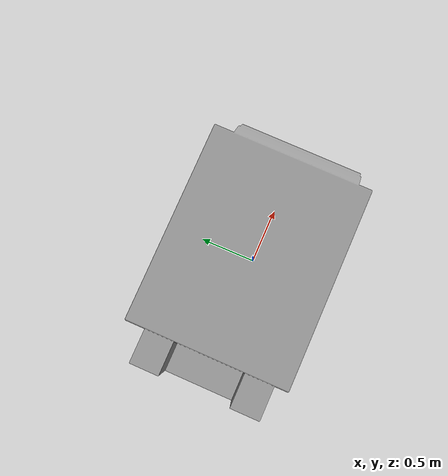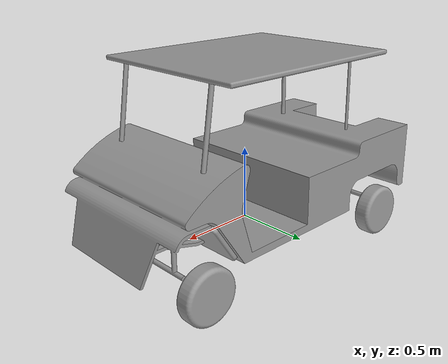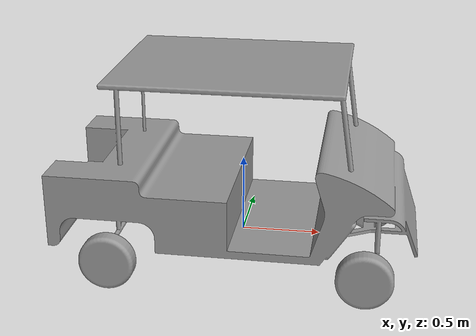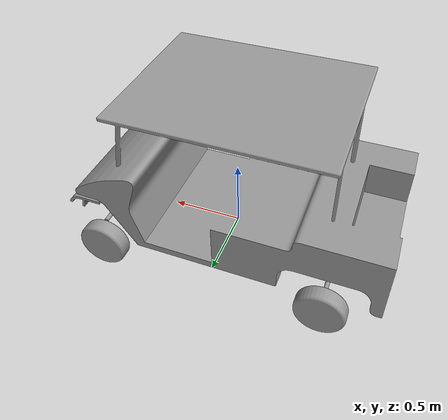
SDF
<?xml version='1.0'?>
<sdf version='1.7'>
  <model name='yoda_car_model'>
    <link name='link_1'>
      <inertial>
        <mass>1</mass>
        <inertia>
          <ixx>0.166667</ixx>
          <ixy>0</ixy>
          <ixz>0</ixz>
          <iyy>0.166667</iyy>
          <iyz>0</iyz>
          <izz>0.166667</izz>
        </inertia>
      </inertial>
      <pose>-0.094832 0.015297 0.069631 0 -0 0</pose>
      <visual name='visual'>
        <pose>0 0 0 0 -0 0</pose>
        <geometry>
          <mesh>
            <uri>/home/emircan/yoda_ws/src/yoda_cpp_package/urdf/arackasa2.dae</uri>
            <scale>1 1 1</scale>
          </mesh>
        </geometry>
        <material>
          <lighting>1</lighting>
          <script>
            <uri>file://media/materials/scripts/gazebo.material</uri>
            <name>Gazebo/Grey</name>
          </script>
          <shader type='pixel'/>
          <emissive>0 0 0 1</emissive>
        </material>
        <transparency>0</transparency>
        <cast_shadows>1</cast_shadows>
      </visual>
      <collision name='collision'>
        <laser_retro>0</laser_retro>
        <max_contacts>10</max_contacts>
        <pose>0 0 0 0 -0 0</pose>
        <geometry>
          <mesh>
            <uri>/home/emircan/yoda_ws/src/yoda_cpp_package/urdf/arackasa2.dae</uri>
            <scale>1 1 1</scale>
          </mesh>
        </geometry>
        <surface>
          <friction>
            <ode>
              <mu>1</mu>
              <mu2>1</mu2>
              <fdir1>0 0 0</fdir1>
              <slip1>0</slip1>
              <slip2>0</slip2>
            </ode>
            <torsional>
              <coefficient>1</coefficient>
              <patch_radius>0</patch_radius>
              <surface_radius>0</surface_radius>
              <use_patch_radius>1</use_patch_radius>
              <ode>
                <slip>0</slip>
              </ode>
            </torsional>
          </friction>
          <bounce>
            <restitution_coefficient>0</restitution_coefficient>
            <threshold>1e+06</threshold>
          </bounce>
          <contact>
            <collide_without_contact>0</collide_without_contact>
            <collide_without_contact_bitmask>1</collide_without_contact_bitmask>
            <collide_bitmask>1</collide_bitmask>
            <ode>
              <soft_cfm>0</soft_cfm>
              <soft_erp>0.2</soft_erp>
              <kp>1e+13</kp>
              <kd>1</kd>
              <max_vel>0.01</max_vel>
              <min_depth>0</min_depth>
            </ode>
            <bullet>
              <split_impulse>1</split_impulse>
              <split_impulse_penetration_threshold>-0.01</split_impulse_penetration_threshold>
              <soft_cfm>0</soft_cfm>
              <soft_erp>0.2</soft_erp>
              <kp>1e+13</kp>
              <kd>1</kd>
            </bullet>
          </contact>
        </surface>
      </collision>
    </link>
    <link name='link_2'>
      <inertial>
        <mass>1</mass>
        <inertia>
          <ixx>0.166667</ixx>
          <ixy>0</ixy>
          <ixz>0</ixz>
          <iyy>0.166667</iyy>
          <iyz>0</iyz>
          <izz>0.166667</izz>
        </inertia>
      </inertial>
      <pose>-0.772676 -0.555976 -0.016475 0 -0 0</pose>
      <visual name='visual'>
        <pose>0 0 0 0 -0 0</pose>
        <geometry>
          <mesh>
            <uri>/home/emircan/yoda_ws/src/yoda_cpp_package/urdf/lastik.dae</uri>
            <scale>1 1 1</scale>
          </mesh>
        </geometry>
        <material>
          <lighting>1</lighting>
          <script>
            <uri>file://media/materials/scripts/gazebo.material</uri>
            <name>Gazebo/Grey</name>
          </script>
          <shader type='pixel'/>
          <emissive>0 0 0 1</emissive>
        </material>
        <transparency>0</transparency>
        <cast_shadows>1</cast_shadows>
      </visual>
      <collision name='collision'>
        <laser_retro>0</laser_retro>
        <max_contacts>10</max_contacts>
        <pose>0 0 0 0 -0 0</pose>
        <geometry>
          <mesh>
            <uri>/home/emircan/yoda_ws/src/yoda_cpp_package/urdf/lastik.dae</uri>
            <scale>1 1 1</scale>
          </mesh>
        </geometry>
        <surface>
          <friction>
            <ode>
              <mu>1</mu>
              <mu2>1</mu2>
              <fdir1>0 0 0</fdir1>
              <slip1>0</slip1>
              <slip2>0</slip2>
            </ode>
            <torsional>
              <coefficient>1</coefficient>
              <patch_radius>0</patch_radius>
              <surface_radius>0</surface_radius>
              <use_patch_radius>1</use_patch_radius>
              <ode>
                <slip>0</slip>
              </ode>
            </torsional>
          </friction>
          <bounce>
            <restitution_coefficient>0</restitution_coefficient>
            <threshold>1e+06</threshold>
          </bounce>
          <contact>
            <collide_without_contact>0</collide_without_contact>
            <collide_without_contact_bitmask>1</collide_without_contact_bitmask>
            <collide_bitmask>1</collide_bitmask>
            <ode>
              <soft_cfm>0</soft_cfm>
              <soft_erp>0.2</soft_erp>
              <kp>1e+13</kp>
              <kd>1</kd>
              <max_vel>0.01</max_vel>
              <min_depth>0</min_depth>
            </ode>
            <bullet>
              <split_impulse>1</split_impulse>
              <split_impulse_penetration_threshold>-0.01</split_impulse_penetration_threshold>
              <soft_cfm>0</soft_cfm>
              <soft_erp>0.2</soft_erp>
              <kp>1e+13</kp>
              <kd>1</kd>
            </bullet>
          </contact>
        </surface>
      </collision>
    </link>
    <link name='link_2_clone'>
      <inertial>
        <mass>1</mass>
        <inertia>
          <ixx>0.166667</ixx>
          <ixy>0</ixy>
          <ixz>0</ixz>
          <iyy>0.166667</iyy>
          <iyz>0</iyz>
          <izz>0.166667</izz>
        </inertia>
      </inertial>
      <pose>0.814094 -0.560971 -0.016646 0 -0 0</pose>
      <visual name='visual'>
        <pose>0 0 0 0 -0 0</pose>
        <geometry>
          <mesh>
            <uri>/home/emircan/yoda_ws/src/yoda_cpp_package/urdf/lastik.dae</uri>
            <scale>1 1 1</scale>
          </mesh>
        </geometry>
        <material>
          <lighting>1</lighting>
          <script>
            <uri>file://media/materials/scripts/gazebo.material</uri>
            <name>Gazebo/Grey</name>
          </script>
          <shader type='pixel'/>
          <emissive>0 0 0 1</emissive>
        </material>
        <transparency>0</transparency>
        <cast_shadows>1</cast_shadows>
      </visual>
      <collision name='collision'>
        <laser_retro>0</laser_retro>
        <max_contacts>10</max_contacts>
        <pose>0 0 0 0 -0 0</pose>
        <geometry>
          <mesh>
            <uri>/home/emircan/yoda_ws/src/yoda_cpp_package/urdf/lastik.dae</uri>
            <scale>1 1 1</scale>
          </mesh>
        </geometry>
        <surface>
          <friction>
            <ode>
              <mu>1</mu>
              <mu2>1</mu2>
              <fdir1>0 0 0</fdir1>
              <slip1>0</slip1>
              <slip2>0</slip2>
            </ode>
            <torsional>
              <coefficient>1</coefficient>
              <patch_radius>0</patch_radius>
              <surface_radius>0</surface_radius>
              <use_patch_radius>1</use_patch_radius>
              <ode>
                <slip>0</slip>
              </ode>
            </torsional>
          </friction>
          <bounce>
            <restitution_coefficient>0</restitution_coefficient>
            <threshold>1e+06</threshold>
          </bounce>
          <contact>
            <collide_without_contact>0</collide_without_contact>
            <collide_without_contact_bitmask>1</collide_without_contact_bitmask>
            <collide_bitmask>1</collide_bitmask>
            <ode>
              <soft_cfm>0</soft_cfm>
              <soft_erp>0.2</soft_erp>
              <kp>1e+13</kp>
              <kd>1</kd>
              <max_vel>0.01</max_vel>
              <min_depth>0</min_depth>
            </ode>
            <bullet>
              <split_impulse>1</split_impulse>
              <split_impulse_penetration_threshold>-0.01</split_impulse_penetration_threshold>
              <soft_cfm>0</soft_cfm>
              <soft_erp>0.2</soft_erp>
              <kp>1e+13</kp>
              <kd>1</kd>
            </bullet>
          </contact>
        </surface>
      </collision>
    </link>
    <link name='link_2_clone_1'>
      <inertial>
        <mass>1</mass>
        <inertia>
          <ixx>0.166667</ixx>
          <ixy>0</ixy>
          <ixz>0</ixz>
          <iyy>0.166667</iyy>
          <iyz>0</iyz>
          <izz>0.166667</izz>
        </inertia>
      </inertial>
      <pose>-0.771347 0.561189 -0.018824 0 -0 3.1384</pose>
      <visual name='visual'>
        <pose>0 0 0 0 -0 0</pose>
        <geometry>
          <mesh>
            <uri>/home/emircan/yoda_ws/src/yoda_cpp_package/urdf/lastik.dae</uri>
            <scale>1 1 1</scale>
          </mesh>
        </geometry>
        <material>
          <lighting>1</lighting>
          <script>
            <uri>file://media/materials/scripts/gazebo.material</uri>
            <name>Gazebo/Grey</name>
          </script>
          <shader type='pixel'/>
          <emissive>0 0 0 1</emissive>
        </material>
        <transparency>0</transparency>
        <cast_shadows>1</cast_shadows>
      </visual>
      <collision name='collision'>
        <laser_retro>0</laser_retro>
        <max_contacts>10</max_contacts>
        <pose>0 0 0 0 -0 0</pose>
        <geometry>
          <mesh>
            <uri>/home/emircan/yoda_ws/src/yoda_cpp_package/urdf/lastik.dae</uri>
            <scale>1 1 1</scale>
          </mesh>
        </geometry>
        <surface>
          <friction>
            <ode>
              <mu>1</mu>
              <mu2>1</mu2>
              <fdir1>0 0 0</fdir1>
              <slip1>0</slip1>
              <slip2>0</slip2>
            </ode>
            <torsional>
              <coefficient>1</coefficient>
              <patch_radius>0</patch_radius>
              <surface_radius>0</surface_radius>
              <use_patch_radius>1</use_patch_radius>
              <ode>
                <slip>0</slip>
              </ode>
            </torsional>
          </friction>
          <bounce>
            <restitution_coefficient>0</restitution_coefficient>
            <threshold>1e+06</threshold>
          </bounce>
          <contact>
            <collide_without_contact>0</collide_without_contact>
            <collide_without_contact_bitmask>1</collide_without_contact_bitmask>
            <collide_bitmask>1</collide_bitmask>
            <ode>
              <soft_cfm>0</soft_cfm>
              <soft_erp>0.2</soft_erp>
              <kp>1e+13</kp>
              <kd>1</kd>
              <max_vel>0.01</max_vel>
              <min_depth>0</min_depth>
            </ode>
            <bullet>
              <split_impulse>1</split_impulse>
              <split_impulse_penetration_threshold>-0.01</split_impulse_penetration_threshold>
              <soft_cfm>0</soft_cfm>
              <soft_erp>0.2</soft_erp>
              <kp>1e+13</kp>
              <kd>1</kd>
            </bullet>
          </contact>
        </surface>
      </collision>
    </link>
    <link name='link_2_clone_1_clone'>
      <inertial>
        <mass>1</mass>
        <inertia>
          <ixx>0.166667</ixx>
          <ixy>0</ixy>
          <ixz>0</ixz>
          <iyy>0.166667</iyy>
          <iyz>0</iyz>
          <izz>0.166667</izz>
        </inertia>
      </inertial>
      <pose>0.824763 0.54046 -0.017685 0 -0 3.1384</pose>
      <visual name='visual'>
        <pose>0 0 0 0 -0 0</pose>
        <geometry>
          <mesh>
            <uri>/home/emircan/yoda_ws/src/yoda_cpp_package/urdf/lastik.dae</uri>
            <scale>1 1 1</scale>
          </mesh>
        </geometry>
        <material>
          <lighting>1</lighting>
          <script>
            <uri>file://media/materials/scripts/gazebo.material</uri>
            <name>Gazebo/Grey</name>
          </script>
          <shader type='pixel'/>
          <emissive>0 0 0 1</emissive>
        </material>
        <transparency>0</transparency>
        <cast_shadows>1</cast_shadows>
      </visual>
      <collision name='collision'>
        <laser_retro>0</laser_retro>
        <max_contacts>10</max_contacts>
        <pose>0 0 0 0 -0 0</pose>
        <geometry>
          <mesh>
            <uri>/home/emircan/yoda_ws/src/yoda_cpp_package/urdf/lastik.dae</uri>
            <scale>1 1 1</scale>
          </mesh>
        </geometry>
        <surface>
          <friction>
            <ode>
              <mu>1</mu>
              <mu2>1</mu2>
              <fdir1>0 0 0</fdir1>
              <slip1>0</slip1>
              <slip2>0</slip2>
            </ode>
            <torsional>
              <coefficient>1</coefficient>
              <patch_radius>0</patch_radius>
              <surface_radius>0</surface_radius>
              <use_patch_radius>1</use_patch_radius>
              <ode>
                <slip>0</slip>
              </ode>
            </torsional>
          </friction>
          <bounce>
            <restitution_coefficient>0</restitution_coefficient>
            <threshold>1e+06</threshold>
          </bounce>
          <contact>
            <collide_without_contact>0</collide_without_contact>
            <collide_without_contact_bitmask>1</collide_without_contact_bitmask>
            <collide_bitmask>1</collide_bitmask>
            <ode>
              <soft_cfm>0</soft_cfm>
              <soft_erp>0.2</soft_erp>
              <kp>1e+13</kp>
              <kd>1</kd>
              <max_vel>0.01</max_vel>
              <min_depth>0</min_depth>
            </ode>
            <bullet>
              <split_impulse>1</split_impulse>
              <split_impulse_penetration_threshold>-0.01</split_impulse_penetration_threshold>
              <soft_cfm>0</soft_cfm>
              <soft_erp>0.2</soft_erp>
              <kp>1e+13</kp>
              <kd>1</kd>
            </bullet>
          </contact>
        </surface>
      </collision>
    </link>
    <!-- SOL ÖN -->
    <joint name='link_1_JOINT_0' type='revolute'>
      <parent>link_1</parent>
      <child>link_2_clone_1_clone</child>
      <pose>0 0 0 0 -0 0</pose>
      <axis>
        <xyz>0 1 0</xyz>
        <limit>
          <lower>-1.79769e+308</lower>
          <upper>1.79769e+308</upper>
          <effort>-1</effort>
          <velocity>-1</velocity>
        </limit>
        <dynamics>
          <spring_reference>0</spring_reference>
          <spring_stiffness>0</spring_stiffness>
          <damping>0</damping>
        </dynamics>
      </axis>
      <physics>
        <ode>
          <limit>
            <cfm>0</cfm>
            <erp>0.2</erp>
          </limit>
          <suspension>
            <cfm>0</cfm>
            <erp>0.2</erp>
          </suspension>
        </ode>
      </physics>
    </joint>
    <!-- SAĞ ÖN -->
    <joint name='link_1_JOINT_1' type='revolute'>
      <parent>link_1</parent>
      <child>link_2_clone</child>
      <pose>0 0 0 0 -0 0</pose>
      <axis>
        <xyz>0 1 0</xyz>
        <limit>
          <lower>-1.79769e+308</lower>
          <upper>1.79769e+308</upper>
          <effort>-1</effort>
          <velocity>-1</velocity>
        </limit>
        <dynamics>
          <spring_reference>0</spring_reference>
          <spring_stiffness>0</spring_stiffness>
          <damping>0</damping>
        </dynamics>
      </axis>
      <physics>
        <ode>
          <limit>
            <cfm>0</cfm>
            <erp>0.2</erp>
          </limit>
          <suspension>
            <cfm>0</cfm>
            <erp>0.2</erp>
          </suspension>
        </ode>
      </physics>
    </joint>
    <!-- SOL ARKA -->
    <joint name='link_1_JOINT_2' type='revolute'>
      <parent>link_1</parent>
      <child>link_2_clone_1</child>
      <pose>0 0 0 0 -0 0</pose>
      <axis>
        <xyz>1 0 0</xyz>
        <limit>
          <lower>-1.79769e+308</lower>
          <upper>1.79769e+308</upper>
          <effort>-1</effort>
          <velocity>-1</velocity>
        </limit>
        <dynamics>
          <spring_reference>0</spring_reference>
          <spring_stiffness>0</spring_stiffness>
          <damping>0</damping>
        </dynamics>
      </axis>
      <physics>
        <ode>
          <limit>
            <cfm>0</cfm>
            <erp>0.2</erp>
          </limit>
          <suspension>
            <cfm>0</cfm>
            <erp>0.2</erp>
          </suspension>
        </ode>
      </physics>
    </joint>
    <!-- SAĞ ARKA -->
    <joint name='link_1_JOINT_3' type='revolute'>
      <parent>link_1</parent>
      <child>link_2</child>
      <pose>0 0 0 0 -0 0</pose>
      <axis>
        <xyz>1 0 0</xyz>
        <limit>
          <lower>-1.79769e+308</lower>
          <upper>1.79769e+308</upper>
          <effort>-1</effort>
          <velocity>-1</velocity>
        </limit>
        <dynamics>
          <spring_reference>0</spring_reference>
          <spring_stiffness>0</spring_stiffness>
          <damping>0</damping>
        </dynamics>
      </axis>
      <physics>
        <ode>
          <limit>
            <cfm>0</cfm>
            <erp>0.2</erp>
          </limit>
          <suspension>
            <cfm>0</cfm>
            <erp>0.2</erp>
          </suspension>
        </ode>
      </physics>
    </joint>
    <static>0</static>
    <allow_auto_disable>1</allow_auto_disable>
  </model>
</sdf>
